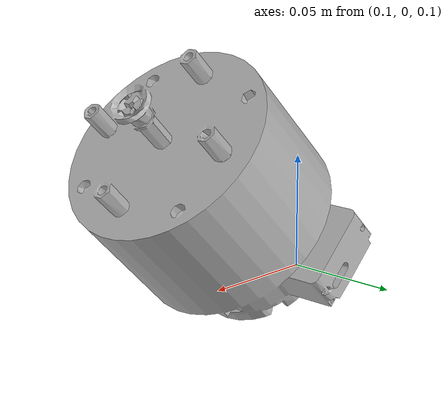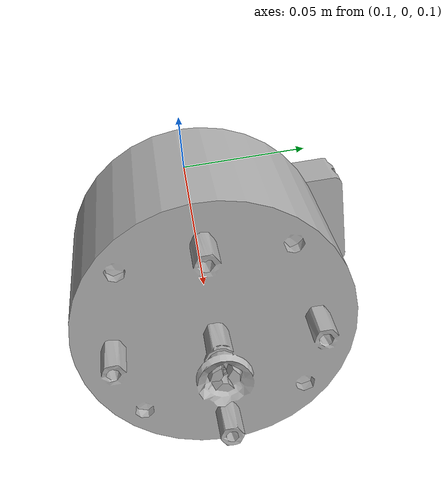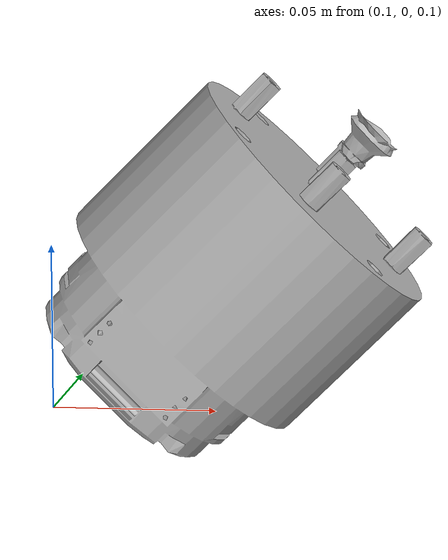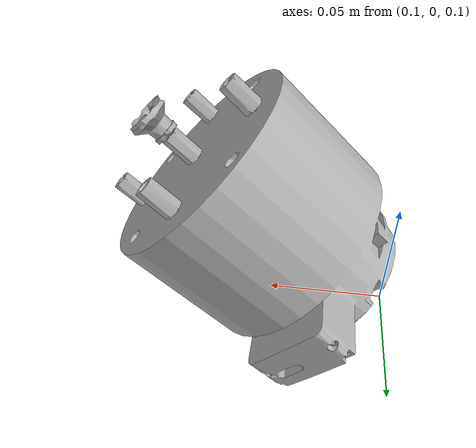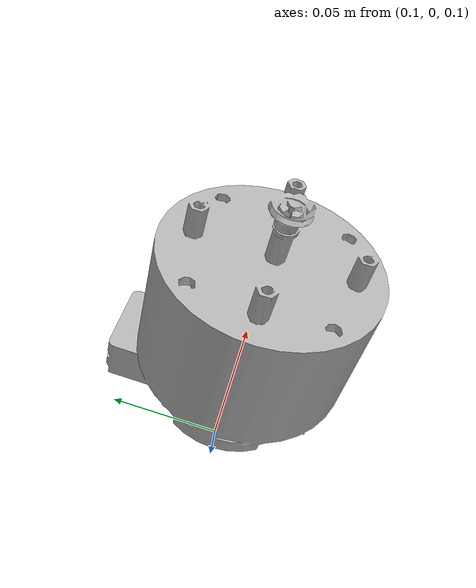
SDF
<?xml version="1.0" ?>
<sdf version="1.6">
  <model name="krvg">
    <link name="link">
      <gravity>false</gravity>
      <visual name="visual">
        <geometry>
          <mesh>
            <uri>file:///root/workcell_ws_classic/src/descriptions/ur_description/meshes/toolchanger/KRVG.STL</uri>
            <scale>1 1 1</scale>
          </mesh>
        </geometry>
        <material>
          <!-- Silver metallic -->
          <ambient>0.6 0.6 0.6 1</ambient>
          <diffuse>0.7 0.7 0.7 1</diffuse>
          <specular>0.8 0.8 0.8 1</specular>
          <emissive>0 0 0 1</emissive>
        </material>
      </visual>

        <inertial>
          <mass>0.5</mass>
          <inertia>
            <ixx>0.001</ixx>
            <ixy>0</ixy>
            <ixz>0</ixz>
            <iyy>0.001</iyy>
            <iyz>0</iyz>
            <izz>0.001</izz>
          </inertia>
        </inertial>
    </link>
  </model>
</sdf>
